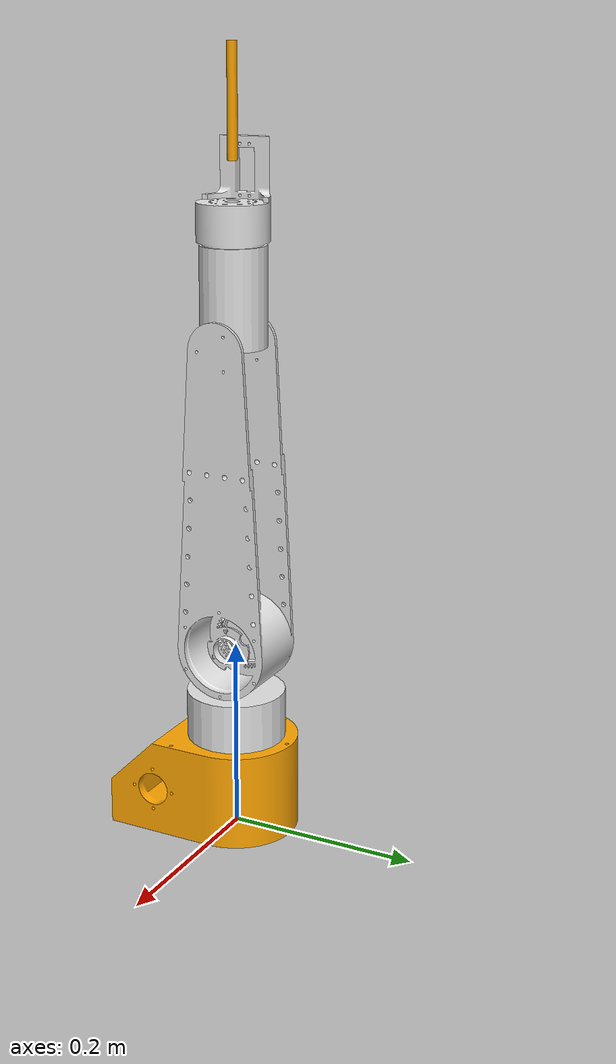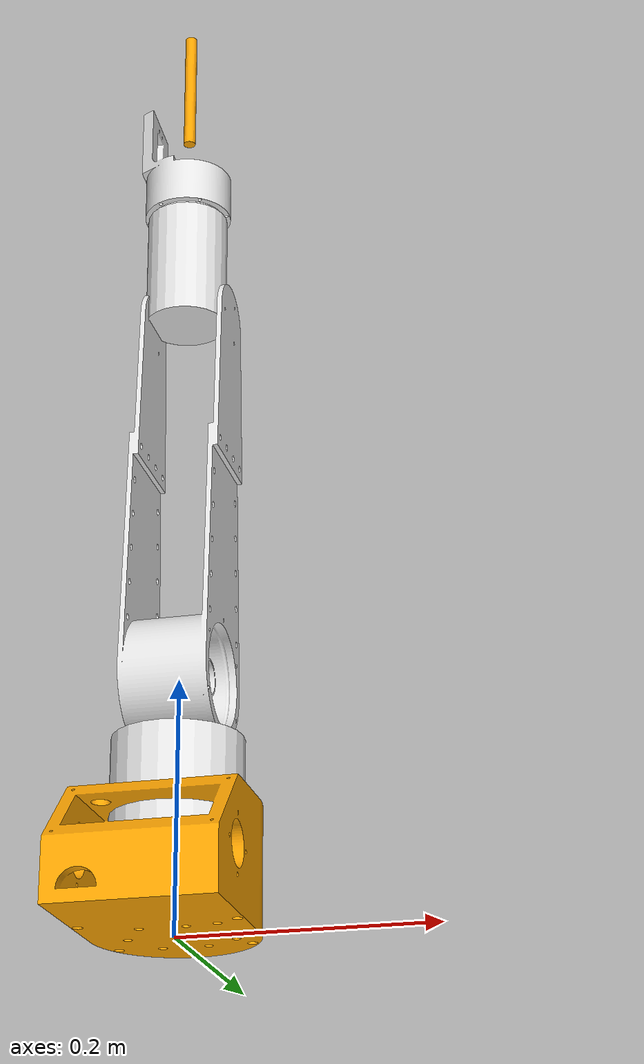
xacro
<?xml version="1.0"?>
<robot name="NIXUS" xmlns:xacro="http://ros.org/wiki/xacro">

  <!-- DESIGN CONSTANTS: -->
  <xacro:property name="base_h" value="0.1" />
  <xacro:property name="shoulder_h" value="0.1025" />
  <xacro:property name="humerus_h" value="0.3125" />
  <xacro:property name="ulna_h" value="0.1" />
  <xacro:property name="wrist_h" value="0.08" />
  <xacro:property name="end_h" value="0.11" />
  <xacro:property name="end_r" value="0.005" />

  <!-- SIMULATION PLACEHOLDERS: -->
  <xacro:property name="mesh_scale" value="0.001 0.001 0.001" /> <!-- for mesh from m to mm -->
  <xacro:property name="white" value="0.9 0.9 0.9 0.9" />
  <xacro:property name="orange" value="1 0.65 0.0 0.9" />

  <!-- SHORTENINGS: -->
  <xacro:macro name="nixus_mesh_link"
  params="name mesh_name material mass move_xyz rot_rpy">
    <link name="${name}">
      <visual>
      <origin rpy="${rot_rpy}" xyz="${move_xyz}"/>
        <geometry>
          <mesh filename="package://nixus/meshes/${mesh_name}.stl" scale="${mesh_scale}"/>
        </geometry>
        <material name="${material}">
          <color rgba="${material}"/>
        </material>
      </visual>
      <collision>
        <geometry>
          <mesh filename="package://nixus/meshes/${mesh_name}.stl" scale="${mesh_scale}"/>
        </geometry>
      </collision>
      <inertial>
        <mass value="${mass}"/>
        <inertia
      ixx="10.0" ixy="0.50" ixz="0.50"
      iyy="10.0" iyz="0.50"
      izz="10.0"/>
      </inertial>
    </link>
  </xacro:macro>

  <xacro:macro name="nixus_cylinder_link"
  params="name radius length material mass move_xyz rot_rpy">
    <link name="${name}">
      <visual>
      <origin rpy="${rot_rpy}" xyz="${move_xyz}"/>
        <geometry>
          <cylinder radius="${radius}" length="${length}"/>
        </geometry>
        <material name="${material}">
          <color rgba="${material}"/>
        </material>
      </visual>
      <collision>
        <geometry>
          <cylinder radius="${radius}" length="${length}"/>
        </geometry>
      </collision>
      <inertial>
        <mass value="${mass}"/>
        <inertia
      ixx="10.0" ixy="0.50" ixz="0.50"
      iyy="10.0" iyz="0.50"
      izz="10.0"/>
      </inertial>
    </link>
  </xacro:macro>

  <xacro:macro name="nixus_joint"
  params= "name type parent_name child_name low_limit upp_limit velocity axis move_xyz rot_rpy">
    <joint name="${name}" type="${type}">
      <parent link="${parent_name}"/>
      <child link="${child_name}"/>
      <limit effort="1000.0" lower="${low_limit}" upper="${upp_limit}" velocity="${velocity}"/>
      <dynamics damping="0.0" friction="1000"/>
      <origin rpy="${rot_rpy}" xyz="${move_xyz}"/>
      <axis xyz = "${axis}"/>
    </joint>
  </xacro:macro>

  <xacro:nixus_mesh_link
  name="base_link"
  mesh_name="NIXUS_base" material="${orange}" mass="10000000"
  move_xyz="0 0 0" rot_rpy="0 0 0"/>

  <xacro:nixus_joint
  name="base_joint"
  type="revolute" parent_name="base_link" child_name="shoulder_link"
  low_limit="-${pi/2}" upp_limit="${pi/2}" velocity="1"
  axis="0 0 1" move_xyz="0 0 ${base_h}" rot_rpy="0 0 0"/>

  <xacro:nixus_cylinder_link
  name="shoulder_link"
  radius="${shoulder_h/2}" length="${shoulder_h}" material="${white}"
  mass="1" move_xyz="0 0 0" rot_rpy="0 0 0"/>

  <xacro:nixus_joint
  name="shoulder_joint"
  type="revolute" parent_name="shoulder_link" child_name="humerus_link"
  low_limit="0" upp_limit="${pi/2}" velocity="1"
  axis="0 0 1" move_xyz="0 0 ${base_h}" rot_rpy="0 ${-pi/2} 0"/>

  <xacro:nixus_mesh_link
  name="humerus_link"
  mesh_name="NIXUS_humerus" material="${white}" mass="1"
  move_xyz="0 0 0" rot_rpy="0 0 0"/>

  <xacro:nixus_joint
  name="elbow_joint"
  type="revolute" parent_name="humerus_link" child_name="ulna_link"
  low_limit="-${4.5*pi/6}" upp_limit="${4.5*pi/6}" velocity="1"
  axis="0 0 1" move_xyz="${humerus_h} 0 0" rot_rpy="0 0 0"/>

  <xacro:nixus_cylinder_link
  name="ulna_link"
  radius="${ulna_h/3}" length="${ulna_h}" material="${white}"
  mass="1" move_xyz="${ulna_h/2} 0 0" rot_rpy="0 ${pi/2} 0"/>

  <xacro:nixus_joint
  name="wrist_joint"
  type="continuous" parent_name="ulna_link" child_name="wrist_link"
  low_limit="-1000" upp_limit="1000" velocity="1"
  axis="0 0 1" move_xyz="${ulna_h} 0 0" rot_rpy="0 ${pi/2} 0"/>

  <xacro:nixus_mesh_link
  name="wrist_link"
  mesh_name="NIXUS_wrist" material="${white}"  mass="1"
  move_xyz="0 0 0" rot_rpy="0 0 -${pi/6}"/>

  <xacro:nixus_joint
  name="end_joint"
  type="revolute" parent_name="wrist_link" child_name="end_link"
  low_limit="-${pi/2}" upp_limit="${pi/2}" velocity="1"
  axis="1 0 0" move_xyz="0 0 ${wrist_h}" rot_rpy="0 0 0"/>

  <xacro:nixus_cylinder_link
  name="end_link"
  radius="${end_r}" length="${end_h}" material="${orange}"
  mass="1" move_xyz="0 0 ${end_h/2}" rot_rpy="0 0 0"/>

  <plugin name="gazebo_ros_joint_state_publisher"
    filename="libgazebo_ros_joint_state_publisher.so">

    <ros>
        <!-- Add a namespace -->
        <namespace>/arm_joints</namespace>
    </ros>
    <!-- Update rate in Hertz -->
    <update_rate>20</update_rate>
    <!-- Name of joints in the model whose states will be published. -->
    <joint_name>base_joint</joint_name>
    <joint_name>shoulder_joint</joint_name>
    <joint_name>elbow_joint</joint_name>
    <joint_name>wrist_joint</joint_name>
    <joint_name>end_joint</joint_name>

  </plugin>

</robot>
